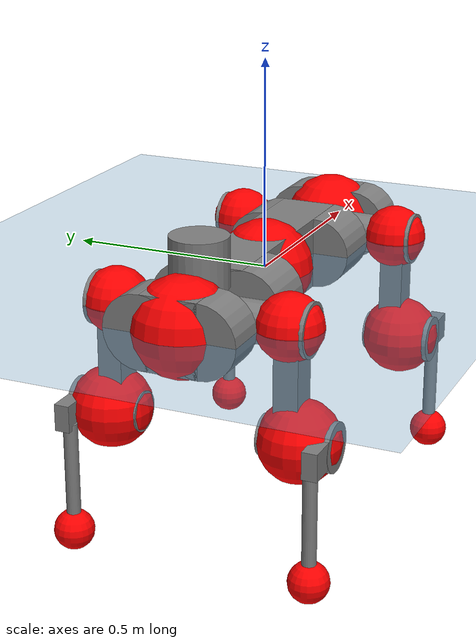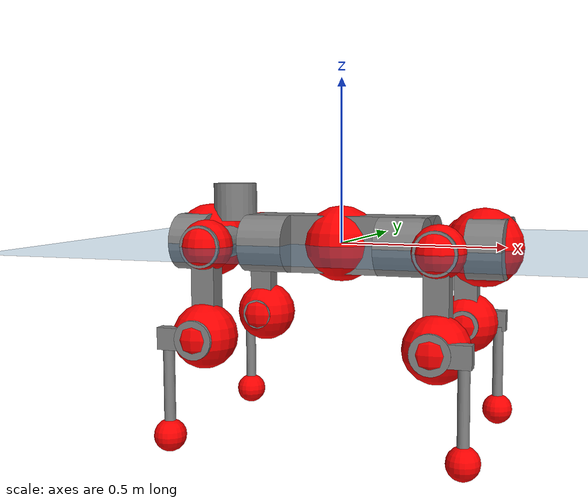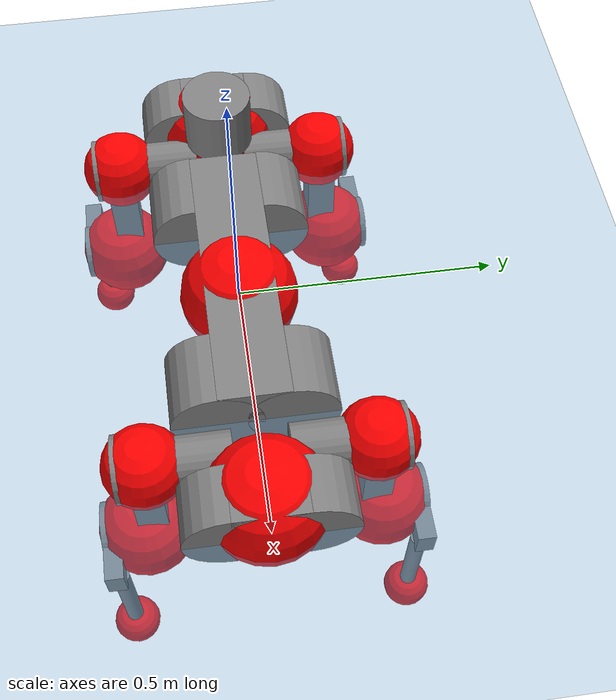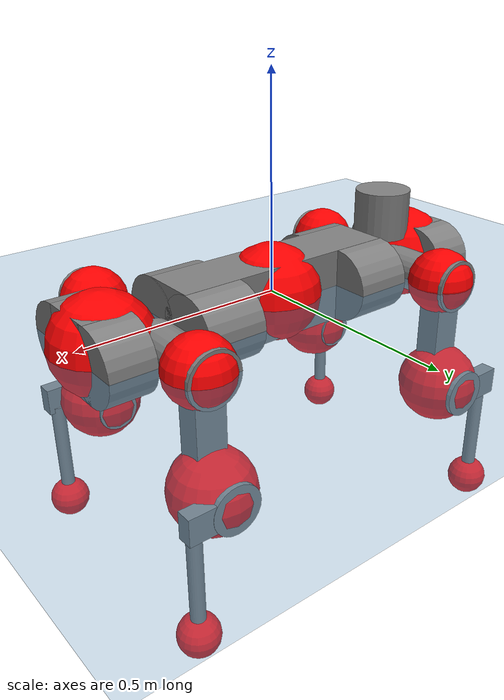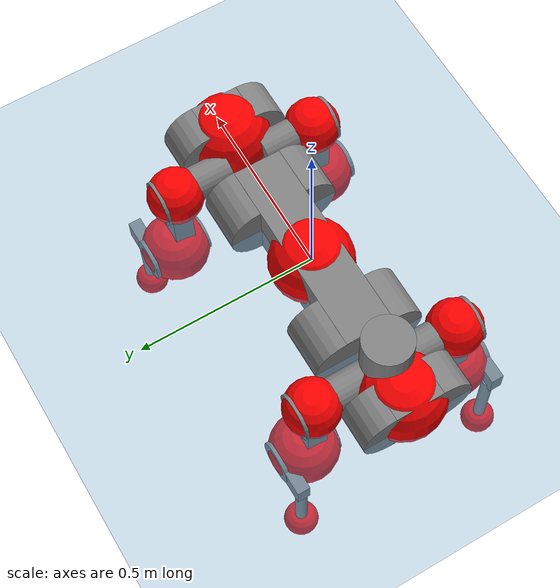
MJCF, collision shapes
<mujoco model="anymal_c">
  <compiler angle="radian" assetdir="assets" balanceinertia="true" inertiafromgeom="false"/>

  <option timestep="0.005" density="1.2" viscosity="2e-05"/>

  <size nkey="1"/>

  <visual>
    <quality shadowsize="8192"/>
    <map shadowclip="0.5"/>
  </visual>

  <default>
    <default class="/">
      <material specular="0" shininess="0.25"/>
      <geom contype="0" conaffinity="0" group="1" solref="-1000 -80"/>
      <site size="0.01 0.005 0.005" group="5"/>
      <general forcelimited="true" forcerange="-80 80" biastype="affine" gainprm="80" biasprm="0 -80 -2"/>
      <default class="anymal_c">
        <joint armature="0.01" damping="0.01" frictionloss="0.1"/>
        <default class="visual">
          <geom type="mesh" group="2"/>
          <default class="visual_zflip"/>
        </default>
        <default class="collision">
          <geom type="cylinder" group="3"/>
          <default class="foot">
            <geom size="0.03 0 0" type="sphere" condim="6" priority="1" friction="0.8 0.02 0.01" solimp="0.015 1 0.03"/>
          </default>
        </default>
      </default>
      <default class="reward_collision_sphere">
        <geom group="5" rgba="1 0 0 1"/>
      </default>
    </default>
  </default>

  <asset>
    <texture type="skybox" colorspace="auto" name="//unnamed_texture_0" builtin="gradient" rgb1="0.95 0.95 0.95" rgb2="0.95 0.95 0.95" width="100" height="600"/>
    <texture type="2d" colorspace="auto" name="texplane" builtin="checker" rgb1="0.345 0.575 0.748" rgb2="0.345 0.575 0.748" markrgb="1 1 1" width="512" height="512"/>
    <texture type="2d" colorspace="linear" name="base" file="base.png"/>
    <texture type="2d" colorspace="linear" name="top_shell" file="top_shell.png"/>
    <texture type="2d" colorspace="linear" name="bottom_shell" file="bottom_shell.png"/>
    <texture type="2d" colorspace="linear" name="remote" file="remote.png"/>
    <texture type="2d" colorspace="linear" name="hatch" file="hatch.png"/>
    <texture type="2d" colorspace="linear" name="handle" file="handle.png"/>
    <texture type="2d" colorspace="linear" name="face" file="face.png"/>
    <texture type="2d" colorspace="linear" name="battery" file="battery.png"/>
    <texture type="2d" colorspace="linear" name="lidar_cage" file="lidar_cage.png"/>
    <texture type="2d" colorspace="linear" name="depth_camera" file="depth_camera.png"/>
    <texture type="2d" colorspace="linear" name="wide_angle_camera" file="wide_angle_camera.png"/>
    <texture type="2d" colorspace="linear" name="lidar" file="lidar.png"/>
    <texture type="2d" colorspace="linear" name="drive" file="drive.png"/>
    <texture type="2d" colorspace="linear" name="hip_l" file="hip_l.png"/>
    <texture type="2d" colorspace="linear" name="shank_l" file="shank_l.png"/>
    <texture type="2d" colorspace="linear" name="foot" file="foot.png"/>
    <texture type="2d" colorspace="linear" name="thigh" file="thigh.png"/>
    <texture type="2d" colorspace="linear" name="shank_r" file="shank_r.png"/>
    <texture type="2d" colorspace="linear" name="hip_r" file="hip_r.png"/>
    <material name="MatPlane" class="/" texture="texplane" texuniform="true" texrepeat="2 2" specular="0.9" shininess="0.5"/>
    <material name="black_plastic" class="/" rgba="0.007 0.007 0.007 1"/>
    <material name="green" class="/" rgba="0.052 0.178 0.033 1"/>
    <material name="red" class="/" rgba="0.178 0.006 0.005 1"/>
    <material name="yellow" class="/" rgba="0.178 0.119 0.006 1"/>
    <material name="lwl" class="/" rgba="0.8 0.8 0.8 1"/>
    <material name="base" class="/" texture="base"/>
    <material name="top_shell" class="/" texture="top_shell"/>
    <material name="bottom_shell" class="/" texture="bottom_shell"/>
    <material name="hip_l" class="/" texture="hip_l"/>
    <material name="thigh" class="/" texture="thigh"/>
    <material name="shank_l" class="/" texture="shank_l"/>
    <material name="foot" class="/" texture="foot"/>
    <material name="hip_r" class="/" texture="hip_r"/>
    <material name="shank" class="/" texture="shank_r"/>
    <material name="hatch" class="/" texture="hatch"/>
    <material name="remote" class="/" texture="remote"/>
    <material name="handle" class="/" texture="handle"/>
    <material name="face" class="/" texture="face"/>
    <material name="depth_camera" class="/" texture="depth_camera"/>
    <material name="wide_angle_camera" class="/" texture="wide_angle_camera"/>
    <material name="battery" class="/" texture="battery"/>
    <material name="lidar_cage" class="/" texture="lidar_cage"/>
    <material name="lidar" class="/" texture="lidar"/>
    <material name="drive" class="/" texture="drive"/>
    <mesh name="base_0" class="/" file="base_0.obj"/>
    <mesh name="base_1" class="/" file="base_1.obj"/>
    <mesh name="base_2" class="/" file="base_2.obj"/>
    <mesh name="base_3" class="/" file="base_3.obj"/>
    <mesh name="base_4" class="/" file="base_4.obj"/>
    <mesh name="base_5" class="/" file="base_5.obj"/>
    <mesh name="top_shell" class="/" file="top_shell.obj"/>
    <mesh name="bottom_shell" class="/" file="bottom_shell.obj"/>
    <mesh name="remote" class="/" file="remote.obj"/>
    <mesh name="handle" class="/" file="handle.obj"/>
    <mesh name="face" class="/" file="face.obj"/>
    <mesh name="wide_angle_camera" class="/" file="wide_angle_camera.obj"/>
    <mesh name="depth_camera" class="/" file="depth_camera.obj"/>
    <mesh name="battery" class="/" file="battery.obj"/>
    <mesh name="lidar_cage" class="/" file="lidar_cage.obj"/>
    <mesh name="lidar" class="/" file="lidar.obj"/>
    <mesh name="drive" class="/" file="drive.obj"/>
    <mesh name="hip_l" class="/" file="hip_l.obj"/>
    <mesh name="thigh" class="/" file="thigh.obj"/>
    <mesh name="shank_l" class="/" file="shank_l.obj"/>
    <mesh name="foot" class="/" file="foot.obj"/>
    <mesh name="hip_r" class="/" file="hip_r.obj"/>
    <mesh name="hatch" class="/" file="hatch.obj"/>
    <mesh name="shank_r" class="/" file="shank_r.obj"/>
  </asset>

  <worldbody>
    <geom name="floor" class="/" size="100 100 0.125" type="plane" group="0" material="MatPlane"/>
    <light name="toplight_shadow" class="/" pos="0 0 5" dir="0.0990148 0.0990148 -0.990148" type="directional" ambient="0.04 0.04 0.04" diffuse="0.55 0.55 0.55" specular="0.12 0.12 0.12"/>
    <light name="toplight_fill" class="/" pos="0 0 5" dir="0.0990148 0.0990148 -0.990148" type="directional" castshadow="false" ambient="0.04 0.04 0.04" diffuse="0.3 0.3 0.3" specular="0.08 0.08 0.08"/>
    <body name="trunk" childclass="anymal_c" pos="-0.000649168 0.000476383 -0.000876986" quat="1 0.000403426 -0.000180401 0.000576283">
      <inertial pos="0.00139751 0.00220916 0.0414151" quat="0.504504 0.495626 0.503731 0.49607" mass="16.8688" diaginertia="0.567463 0.64031 0.145742"/>
      <joint name="//unnamed_joint_0" type="free" armature="0" damping="0" frictionloss="0"/>
      <geom name="//unnamed_geom_1" class="visual" material="green" mesh="base_0"/>
      <geom name="//unnamed_geom_2" class="visual" material="yellow" mesh="base_1"/>
      <geom name="//unnamed_geom_3" class="visual" material="red" mesh="base_2"/>
      <geom name="//unnamed_geom_4" class="visual" material="black_plastic" mesh="base_3"/>
      <geom name="//unnamed_geom_5" class="visual" material="lwl" mesh="base_4"/>
      <geom name="//unnamed_geom_6" class="visual" material="base" mesh="base_5"/>
      <geom name="trunk_1" class="collision" size="0.280605 0.0677322 0.0870843" type="box"/>
      <geom name="trunk_2" class="collision" size="0.0870843 0.0701512" pos="0.211736 0.0703542 0" quat="0.707107 0 0.707107 0"/>
      <geom name="trunk_3" class="collision" size="0.0870843 0.0701512" pos="-0.211736 0.0703542 0" quat="0.707107 0 0.707107 0"/>
      <geom name="trunk_4" class="collision" size="0.0870843 0.0701512" pos="0.211736 -0.0703542 0" quat="0.707107 0 0.707107 0"/>
      <geom name="trunk_5" class="collision" size="0.0870843 0.0701512" pos="-0.211736 -0.0703542 0" quat="0.707107 0 0.707107 0"/>
      <geom name="//unnamed_geom_12" class="visual" material="top_shell" mesh="top_shell"/>
      <geom name="//unnamed_geom_13" class="visual" material="bottom_shell" mesh="bottom_shell"/>
      <geom name="//unnamed_geom_14" class="visual" material="remote" mesh="remote"/>
      <geom name="//unnamed_geom_15" class="visual" material="handle" mesh="handle"/>
      <geom name="//unnamed_geom_16" class="visual" pos="0.403515 0 0" quat="1 0 0 0" material="face" mesh="face"/>
      <geom name="trunk_6" class="collision" size="0.0532182 0.0677322 0.0870843" pos="0.457058 0 0" type="box"/>
      <geom name="//unnamed_geom_18" class="collision" size="0.0870843 0.0532182" pos="0.457058 0.0703542 0" quat="0.707107 0 0.707107 0"/>
      <geom name="//unnamed_geom_19" class="collision" size="0.0870843 0.0532182" pos="0.457058 -0.0703542 0" quat="0.707107 0 0.707107 0"/>
      <geom name="//unnamed_geom_20" class="visual" pos="0.449414 0 -0.0266138" quat="0.965926 0 0.258819 0" material="depth_camera" mesh="depth_camera"/>
      <geom name="//unnamed_geom_21" class="visual" pos="0.499405 0 0.013836" material="wide_angle_camera" mesh="wide_angle_camera"/>
      <geom name="//unnamed_geom_22" class="visual_zflip" pos="-0.403515 0 0" quat="0 0 0 1" material="face" mesh="face"/>
      <geom name="trunk_7" class="collision" size="0.0532182 0.0677322 0.0870843" pos="-0.457058 0 0" quat="0 0 0 1" type="box"/>
      <geom name="//unnamed_geom_24" class="collision" size="0.0870843 0.0532182" pos="-0.457058 -0.0703542 0" quat="0 -0.707107 0 0.707107"/>
      <geom name="//unnamed_geom_25" class="collision" size="0.0870843 0.0532182" pos="-0.457058 0.0703542 0" quat="0 -0.707107 0 0.707107"/>
      <geom name="//unnamed_geom_26" class="visual" pos="-0.449414 0 -0.0266138" quat="0 -0.258819 0 0.965926" material="depth_camera" mesh="depth_camera"/>
      <geom name="//unnamed_geom_27" class="visual_zflip" pos="-0.499405 0 0.013836" quat="0 0 0 1" material="wide_angle_camera" mesh="wide_angle_camera"/>
      <geom name="//unnamed_geom_28" class="visual" material="battery" mesh="battery"/>
      <geom name="//unnamed_geom_29" class="visual" pos="0 0.077259 0.0272238" quat="0.683013 -0.183013 0.183013 0.683013" material="depth_camera" mesh="depth_camera"/>
      <geom name="//unnamed_geom_30" class="visual" pos="0 -0.077259 0.0272238" quat="0.683013 0.183013 0.183013 -0.683013" material="depth_camera" mesh="depth_camera"/>
      <geom name="//unnamed_geom_31" class="visual" pos="-0.354354 0 0.0679325" quat="1 0 0 0" material="lidar_cage" mesh="lidar_cage"/>
      <geom name="trunk_8" class="collision" size="0.0677322 0.0580562" pos="-0.354354 0 0.123388"/>
      <geom name="//unnamed_geom_33" class="visual" pos="-0.354354 1.23992e-05 0.131429" quat="0.707107 0 0 -0.707107" material="lidar" mesh="lidar"/>
      <geom name="//unnamed_geom_34" class="visual" pos="0.291952 0.104497 1.39395e-09" quat="0.258819 0.965926 0 0" material="drive" mesh="drive"/>
      <geom name="//unnamed_geom_35" class="visual" pos="0.291952 -0.104497 -1.39395e-09" quat="0.258819 -0.965926 0 0" material="drive" mesh="drive"/>
      <geom name="//unnamed_geom_36" class="visual" pos="-0.291952 0.104497 -1.39395e-09" quat="0 0 0.965926 -0.258819" material="drive" mesh="drive"/>
      <geom name="//unnamed_geom_37" class="visual" pos="-0.291952 -0.104497 1.39395e-09" quat="0 0 -0.965926 -0.258819" material="drive" mesh="drive"/>
      <geom name="//unnamed_geom_38" class="visual" pos="0.112926 0 0.0674703" quat="1 0 0 0" material="hatch" mesh="hatch"/>
      <geom name="//unnamed_geom_39" class="reward_collision_sphere" size="0.116112"/>
      <geom name="//unnamed_geom_40" class="reward_collision_sphere" size="0.116112" pos="0.438075 0 0"/>
      <geom name="//unnamed_geom_41" class="reward_collision_sphere" size="0.116112" pos="-0.438075 0 0"/>
      <site name="imu" pos="0.243131 0.0225456 0.0303791" size="0.00967603"/>
      <camera name="track" pos="0 -2.01012 0" quat="0.707107 0.707107 0 0" mode="trackcom"/>
      <camera name="ego_camera" pos="0.438075 0 -0.03697" quat="-0.5 -0.5 0.5 0.5"/>
      <body name="LF_HIP" pos="0.291923 0.10729 0.0026629" quat="0.258789 0.965934 -3.89272e-05 5.44368e-05">
        <inertial pos="0.053478 -0.0148033 -0.00848412" quat="-0.129974 0.711082 -0.139101 0.676845" mass="2.43718" diaginertia="0.00510333 0.00478367 0.00213686"/>
        <joint name="LF_HAA" pos="0 0 0" axis="0.999959 0.00751622 0.00497763" range="-0.720852 0.544633" armature="0.00977781" damping="0" frictionloss="0.110079"/>
        <geom name="//unnamed_geom_42" class="visual" pos="0 8.2e-05 -1.34684e-05" quat="0.258819 -0.965926 0 0" material="hip_l" mesh="hip_l"/>
        <geom name="//unnamed_geom_43" class="visual" pos="0.0583126 -0.071045 -0.0404201" quat="0.183013 -0.683013 0.683013 0.183013" material="drive" mesh="drive"/>
        <geom name="//unnamed_geom_44" class="collision" size="0.0483802 0.0677322" pos="0.0583126 -0.0120203 -0.00638195" quat="-0.353553 -0.612372 0.612372 -0.353553"/>
        <body name="LF_THIGH" pos="0.0562196 -0.0707018 -0.0373606" quat="0.182922 -0.683275 0.682836 0.182784">
          <inertial pos="0.0300698 0.000228005 -0.226033" quat="0.992209 -0.00364965 -0.0853748 0.0906605" mass="2.73604" diaginertia="0.0259062 0.029838 0.00267078"/>
          <joint name="LF_HFE" pos="0 0 0" axis="0.999999 0.000951372 0.000695336" range="-3.20158 3.13381" armature="0.0085228" damping="0.0210573" frictionloss="0.0972617"/>
          <geom name="//unnamed_geom_45" class="visual" pos="-0.000627925 -9.89463e-07 0" quat="0.707107 0 0 -0.707107" material="thigh" mesh="thigh"/>
          <geom name="//unnamed_geom_46" class="collision" size="0.0628942 0.0387041" pos="0.03894 0 0" quat="0.5 0.5 -0.5 -0.5"/>
          <geom name="//unnamed_geom_47" class="collision" size="0.0362851 0.0290281 0.136736" pos="0.029205 0 -0.13061" quat="0.707107 0 0 -0.707107" type="box"/>
          <geom name="//unnamed_geom_48" class="visual" pos="0.097642 0 -0.263412" quat="1 0 0 0" material="drive" mesh="drive"/>
          <geom name="//unnamed_geom_49" class="collision" size="0.0483802 0.0677322" pos="0.029497 0 -0.263412" quat="0.707107 0 0.707107 0"/>
          <geom name="//unnamed_geom_50" class="reward_collision_sphere" size="0.0774083" pos="0.0243375 0 0"/>
          <body name="LF_SHANK" pos="0.0990206 0.000341219 -0.264536" quat="1 -2.27993e-06 -1.41074e-06 -7.35097e-05">
            <inertial pos="0.00518071 -0.0628162 -0.0745095" quat="0.993192 -0.11355 0.00297156 -0.0258427" mass="0.540123" diaginertia="0.00879514 0.00945683 0.000758059"/>
            <joint name="LF_KFE" pos="0 0 0" axis="0.999973 0.00293404 0.00678108" range="-3.14594 3.19585" armature="0.00926107" damping="0.0066847" frictionloss="0.0998272"/>
            <geom name="//unnamed_geom_51" class="visual" pos="-0.000204753 -0.00109175 0" quat="0.707107 0 0 -0.707107" material="shank_l" mesh="shank_l"/>
            <geom name="LF_kfe_act" class="collision" size="0.0580562 0.0193521" pos="0.01947 0 0" quat="0.5 0.5 -0.5 -0.5"/>
            <geom name="//unnamed_geom_53" class="collision" size="0.0556362 0.0326566 0.0183845" pos="0.01947 -0.0577899 0" quat="0.5 0.5 -0.5 -0.5" type="box"/>
            <geom name="//unnamed_geom_54" class="visual" pos="0.0127042 -0.0887468 -0.312369" quat="0.382683 0 0 -0.92388" material="foot" mesh="foot"/>
            <geom name="LF_calf" class="collision" size="0.0169331 0.136676" pos="0.0127042 -0.088395 -0.156185" quat="0.707107 0 0 -0.707107"/>
            <geom name="LF_foot" class="foot" size="0.028879" pos="0.0127042 -0.088395 -0.291574" quat="0.707107 0 0 -0.707107"/>
            <geom name="//unnamed_geom_57" class="reward_collision_sphere" size="0.0967603" pos="-0.048675 0 0"/>
            <geom name="//unnamed_geom_58" class="reward_collision_sphere" size="0.0483802" pos="0.0127042 -0.088395 -0.291574"/>
            <site name="LF_foot" class="foot" pos="0.0127042 -0.088395 -0.291574" quat="0.707107 0 0 -0.707107" size="0.00967603"/>
          </body>
        </body>
      </body>
      <body name="RF_HIP" pos="0.289794 -0.103797 0.00265884" quat="0.258894 -0.965906 2.09092e-06 0.000129479">
        <inertial pos="0.0530646 0.0159116 -0.00845462" quat="0.132615 0.680978 0.128972 0.708554" mass="2.49206" diaginertia="0.0050208 0.00496946 0.00216212"/>
        <joint name="RF_HAA" pos="0 0 0" axis="0.999934 0.00508617 -0.0102621" range="-0.511251 0.669416" armature="0.0101314" damping="0" frictionloss="0.110398"/>
        <geom name="//unnamed_geom_59" class="visual" pos="0 -8.19994e-05 -1.34684e-05" quat="0.258819 0.965926 0 0" material="hip_r" mesh="hip_r"/>
        <geom name="//unnamed_geom_60" class="visual" pos="0.0583126 0.071045 -0.0404201" quat="0.183013 0.683013 0.683013 -0.183013" material="drive" mesh="drive"/>
        <geom name="//unnamed_geom_61" class="collision" size="0.0483802 0.0677322" pos="0.0583126 0.0120203 -0.00638195" quat="-0.353553 0.612372 0.612372 0.353553"/>
        <body name="RF_THIGH" pos="0.0581528 0.0701745 -0.0401854" quat="0.182426 0.683007 0.68337 -0.182286">
          <inertial pos="0.0274954 0.000194677 -0.228055" quat="0.993273 -0.000235249 -0.0773484 0.0861782" mass="2.87518" diaginertia="0.0262254 0.0298129 0.00291485"/>
          <joint name="RF_HFE" pos="0 0 0" axis="0.999999 0.00107253 -0.000793103" stiffness="0.0105401" range="-3.14636 3.08184" armature="0.00838167" damping="0.0109078" frictionloss="0.0849696"/>
          <geom name="//unnamed_geom_62" class="visual" pos="-0.000627925 -9.89463e-07 0" quat="0.707107 0 0 -0.707107" material="thigh" mesh="thigh"/>
          <geom name="//unnamed_geom_63" class="collision" size="0.0628942 0.0387041" pos="0.03894 0 0" quat="0.5 0.5 0.5 0.5"/>
          <geom name="//unnamed_geom_64" class="collision" size="0.0362851 0.0290281 0.136736" pos="0.029205 0 -0.13061" quat="0.707107 0 0 0.707107" type="box"/>
          <geom name="//unnamed_geom_65" class="visual" pos="0.097642 0 -0.263412" quat="1 0 0 0" material="drive" mesh="drive"/>
          <geom name="//unnamed_geom_66" class="collision" size="0.0483802 0.0677322" pos="0.029497 0 -0.263412" quat="0.707107 0 0.707107 0"/>
          <geom name="//unnamed_geom_67" class="reward_collision_sphere" size="0.0774083" pos="0.0243375 0 0"/>
          <body name="RF_SHANK" pos="0.0962338 0.000892818 -0.26382" quat="1 0.000148434 0.00012624 3.44098e-05">
            <inertial pos="0.00475658 0.0599606 -0.0718846" quat="0.992815 0.11647 -0.00187546 0.0273636" mass="0.524169" diaginertia="0.00882451 0.00951352 0.000713945"/>
            <joint name="RF_KFE" pos="0 0 0" axis="1 1.9698e-05 -8.39787e-05" range="-3.14508 3.14907" armature="0.00935195" damping="0" frictionloss="0.0838292"/>
            <geom name="//unnamed_geom_68" class="visual" pos="-0.000204752 0.00109175 0" quat="0.707107 0 0 0.707107" material="shank" mesh="shank_r"/>
            <geom name="RF_kfe_act" class="collision" size="0.0580562 0.0193521" pos="0.01947 0 0" quat="0.5 0.5 0.5 0.5"/>
            <geom name="//unnamed_geom_70" class="collision" size="0.0556362 0.0326566 0.0183845" pos="0.01947 0.0577899 0" quat="0.5 0.5 0.5 0.5" type="box"/>
            <geom name="//unnamed_geom_71" class="visual" pos="0.0127041 0.0887468 -0.312369" quat="0.382683 0 0 0.92388" material="foot" mesh="foot"/>
            <geom name="RF_calf" class="collision" size="0.0169331 0.136676" pos="0.0127042 0.088395 -0.156185" quat="0.707107 0 0 0.707107"/>
            <geom name="RF_foot" class="foot" size="0.0272541" pos="0.0127042 0.088395 -0.291574" quat="0.707107 0 0 0.707107"/>
            <geom name="//unnamed_geom_74" class="reward_collision_sphere" size="0.0967603" pos="-0.048675 0 0"/>
            <geom name="//unnamed_geom_75" class="reward_collision_sphere" size="0.0483802" pos="0.0127042 0.088395 -0.291574"/>
            <site name="RF_foot" class="foot" pos="0.0127042 0.088395 -0.291574" quat="0.707107 0 0 0.707107" size="0.00967603"/>
          </body>
        </body>
      </body>
      <body name="LH_HIP" pos="-0.292047 0.102352 0.0029988" quat="-0.000129806 -0.000474575 0.966161 -0.257939">
        <inertial pos="0.0538 0.013543 -0.00852751" quat="0.12866 0.686052 0.128547 0.704453" mass="2.45509" diaginertia="0.00477765 0.00500573 0.0020732"/>
        <joint name="LH_HAA" pos="0 0 0" axis="0.999944 -0.0105372 0.000289776" range="-0.531716 0.752425" armature="0.0106861" damping="0.000779461" frictionloss="0.0947957"/>
        <geom name="//unnamed_geom_76" class="visual" pos="0 -8.19994e-05 -1.34684e-05" quat="-0.258819 -0.965926 0 0" material="hip_r" mesh="hip_r"/>
        <geom name="//unnamed_geom_77" class="visual" pos="0.0583126 0.071045 -0.0404201" quat="0.183013 0.683013 0.683013 -0.183013" material="drive" mesh="drive"/>
        <geom name="//unnamed_geom_78" class="collision" size="0.0483802 0.0677322" pos="0.0583126 0.0120203 -0.00638195" quat="-0.353553 0.612372 0.612372 0.353553"/>
        <body name="LH_THIGH" pos="0.0584134 0.0710327 -0.0398756" quat="0.184107 0.683079 0.682456 -0.183745">
          <inertial pos="0.0304399 -0.00275954 -0.227437" quat="0.992786 -0.00509329 -0.0810359 0.0882236" mass="2.8179" diaginertia="0.0269513 0.0305228 0.0029226"/>
          <joint name="LH_HFE" pos="0 0 0" axis="0.999991 0.0028066 -0.00315801" stiffness="0.0106132" range="-3.19872 3.12222" armature="0.00934274" damping="0.00730079" frictionloss="0.109054"/>
          <geom name="//unnamed_geom_79" class="visual" pos="-0.000627925 -9.89463e-07 0" quat="0.707107 0 0 -0.707107" material="thigh" mesh="thigh"/>
          <geom name="//unnamed_geom_80" class="collision" size="0.0628942 0.0387041" pos="0.03894 0 0" quat="0.5 0.5 -0.5 -0.5"/>
          <geom name="//unnamed_geom_81" class="collision" size="0.0362851 0.0290281 0.136736" pos="0.029205 0 -0.13061" quat="0.707107 0 0 -0.707107" type="box"/>
          <geom name="//unnamed_geom_82" class="visual" pos="0.097642 0 -0.263412" quat="1 0 0 0" material="drive" mesh="drive"/>
          <geom name="//unnamed_geom_83" class="collision" size="0.0483802 0.0677322" pos="0.029497 0 -0.263412" quat="0.707107 0 0.707107 0"/>
          <geom name="//unnamed_geom_84" class="reward_collision_sphere" size="0.0774083" pos="0.0243375 0 0"/>
          <body name="LH_SHANK" pos="0.0951891 -0.00161378 -0.264488" quat="0.999999 -0.00111864 -0.000513137 0.000373716">
            <inertial pos="0.00428274 0.0641673 -0.0751296" quat="0.993768 0.109632 0.000606793 0.0201241" mass="0.508777" diaginertia="0.00859876 0.00884086 0.000751396"/>
            <joint name="LH_KFE" pos="0 0 0" axis="0.999993 -0.00244181 -0.00290651" range="-3.1503 3.13666" armature="0.0104688" damping="0.00667419" frictionloss="0.0945996"/>
            <geom name="//unnamed_geom_85" class="visual" pos="-0.000204752 0.00109175 0" quat="-0.707107 0 0 -0.707107" material="shank" mesh="shank_r"/>
            <geom name="LH_kfe_act" class="collision" size="0.0580562 0.0193521" pos="0.01947 0 0" quat="0.5 0.5 -0.5 -0.5"/>
            <geom name="//unnamed_geom_87" class="collision" size="0.0556362 0.0326566 0.0183845" pos="0.01947 0.0577899 0" quat="0.5 0.5 -0.5 -0.5" type="box"/>
            <geom name="//unnamed_geom_88" class="visual" pos="0.0127041 0.0887468 -0.312369" quat="-0.382683 0 0 -0.92388" material="foot" mesh="foot"/>
            <geom name="LH_calf" class="collision" size="0.0169331 0.136676" pos="0.0127042 0.088395 -0.156185" quat="0.707107 0 0 -0.707107"/>
            <geom name="LH_foot" class="foot" size="0.0321456" pos="0.0127042 0.088395 -0.291574" quat="0.707107 0 0 -0.707107"/>
            <geom name="//unnamed_geom_91" class="reward_collision_sphere" size="0.0967603" pos="-0.048675 0 0"/>
            <geom name="//unnamed_geom_92" class="reward_collision_sphere" size="0.0483802" pos="0.0127042 0.088395 -0.291574"/>
            <site name="LH_foot" class="foot" pos="0.0127042 0.088395 -0.291574" quat="0.707107 0 0 -0.707107" size="0.00967603"/>
          </body>
        </body>
      </body>
      <body name="RH_HIP" pos="-0.291584 -0.104934 0.00225718" quat="5.93638e-05 -0.000107636 -0.965836 -0.259153">
        <inertial pos="0.0528003 -0.0182676 -0.00791193" quat="-0.12505 0.71208 -0.141559 0.676215" mass="2.54373" diaginertia="0.00526027 0.005072 0.00232114"/>
        <joint name="RH_HAA" pos="0 0 0" axis="0.999999 4.54387e-05 0.00107365" range="-0.777651 0.492916" armature="0.00974177" damping="0.011546" frictionloss="0.0983982"/>
        <geom name="//unnamed_geom_93" class="visual" pos="0 8.2e-05 -1.34684e-05" quat="-0.258819 0.965926 0 0" material="hip_l" mesh="hip_l"/>
        <geom name="//unnamed_geom_94" class="visual" pos="0.0583126 -0.071045 -0.0404201" quat="-0.183013 0.683013 -0.683013 -0.183013" material="drive" mesh="drive"/>
        <geom name="//unnamed_geom_95" class="collision" size="0.0483802 0.0677322" pos="0.0583126 -0.0120203 -0.00638195" quat="0.353553 0.612372 -0.612372 0.353553"/>
        <body name="RH_THIGH" pos="0.058874 -0.0716552 -0.0408174" quat="-0.183029 0.683001 -0.683019 -0.183016">
          <inertial pos="0.0327251 -0.00286023 -0.228852" quat="0.994113 0.00221691 -0.0687999 0.0836713" mass="2.70935" diaginertia="0.0265901 0.0299881 0.00279208"/>
          <joint name="RH_HFE" pos="0 0 0" axis="0.999924 -0.0123232 0.000611803" range="-3.14351 3.09366" armature="0.00974995" damping="0" frictionloss="0.0914509"/>
          <geom name="//unnamed_geom_96" class="visual" pos="-0.000627925 -9.89463e-07 0" quat="0.707107 0 0 -0.707107" material="thigh" mesh="thigh"/>
          <geom name="//unnamed_geom_97" class="collision" size="0.0628942 0.0387041" pos="0.03894 0 0" quat="0.5 0.5 0.5 0.5"/>
          <geom name="//unnamed_geom_98" class="collision" size="0.0362851 0.0290281 0.136736" pos="0.029205 0 -0.13061" quat="0.707107 0 0 0.707107" type="box"/>
          <geom name="//unnamed_geom_99" class="visual" pos="0.097642 0 -0.263412" quat="1 0 0 0" material="drive" mesh="drive"/>
          <geom name="//unnamed_geom_100" class="collision" size="0.0483802 0.0677322" pos="0.029497 0 -0.263412" quat="0.707107 0 0.707107 0"/>
          <geom name="//unnamed_geom_101" class="reward_collision_sphere" size="0.0774083" pos="0.0243375 0 0"/>
          <body name="RH_SHANK" pos="0.0966581 0.003026 -0.265327" quat="1 -6.92741e-05 -3.67526e-05 3.66065e-06">
            <inertial pos="0.00724563 -0.0609969 -0.0745377" quat="0.992416 -0.121296 0.00100333 -0.0199118" mass="0.550331" diaginertia="0.0092243 0.010149 0.000767791"/>
            <joint name="RH_KFE" pos="0 0 0" axis="0.999996 -0.0027241 0.00102755" range="-3.09194 3.1178" armature="0.0098391" damping="0" frictionloss="0.0908449"/>
            <geom name="//unnamed_geom_102" class="visual" pos="-0.000204753 -0.00109175 0" quat="0.707107 0 0 -0.707107" material="shank_l" mesh="shank_l"/>
            <geom name="RH_kfe_act" class="collision" size="0.0580562 0.0193521" pos="0.01947 0 0" quat="0.5 0.5 0.5 0.5"/>
            <geom name="//unnamed_geom_104" class="collision" size="0.0556362 0.0326566 0.0183845" pos="0.01947 -0.0577899 0" quat="0.5 0.5 0.5 0.5" type="box"/>
            <geom name="//unnamed_geom_105" class="visual" pos="0.0127042 -0.0887468 -0.312369" quat="0.382683 0 0 -0.92388" material="foot" mesh="foot"/>
            <geom name="RH_calf" class="collision" size="0.0169331 0.136676" pos="0.0127042 -0.088395 -0.156185" quat="0.707107 0 0 0.707107"/>
            <geom name="RH_foot" class="foot" size="0.0236046" pos="0.0127042 -0.088395 -0.291574" quat="0.707107 0 0 0.707107"/>
            <geom name="//unnamed_geom_108" class="reward_collision_sphere" size="0.0967603" pos="-0.048675 0 0"/>
            <geom name="//unnamed_geom_109" class="reward_collision_sphere" size="0.0483802" pos="0.0127042 -0.088395 -0.291574"/>
            <site name="RH_foot" class="foot" pos="0.0127042 -0.088395 -0.291574" quat="0.707107 0 0 0.707107" size="0.00967603"/>
          </body>
        </body>
      </body>
    </body>
  </worldbody>

  <contact>
    <pair class="/" geom1="floor" geom2="LF_foot" name="//unnamed_contact_0"/>
    <pair class="/" geom1="floor" geom2="RF_foot" name="//unnamed_contact_1"/>
    <pair class="/" geom1="floor" geom2="LH_foot" name="//unnamed_contact_2"/>
    <pair class="/" geom1="floor" geom2="RH_foot" name="//unnamed_contact_3"/>
  </contact>

  <actuator>
    <general name="LF_HAA" class="/" joint="LF_HAA" forcerange="-77.1616 77.1616" gainprm="77.9607" biasprm="0 -77.9607 -1.81731"/>
    <general name="LF_HFE" class="/" joint="LF_HFE" forcerange="-78.6167 78.6167" gainprm="77.9607" biasprm="0 -77.9607 -1.81731"/>
    <general name="LF_KFE" class="/" joint="LF_KFE" forcerange="-85.8427 85.8427" gainprm="77.9607" biasprm="0 -77.9607 -1.81731"/>
    <general name="RF_HAA" class="/" joint="RF_HAA" forcerange="-79.0697 79.0697" gainprm="77.9607" biasprm="0 -77.9607 -1.81731"/>
    <general name="RF_HFE" class="/" joint="RF_HFE" forcerange="-87.6971 87.6971" gainprm="77.9607" biasprm="0 -77.9607 -1.81731"/>
    <general name="RF_KFE" class="/" joint="RF_KFE" forcerange="-76.6411 76.6411" gainprm="77.9607" biasprm="0 -77.9607 -1.81731"/>
    <general name="LH_HAA" class="/" joint="LH_HAA" forcerange="-77.5567 77.5567" gainprm="77.9607" biasprm="0 -77.9607 -1.81731"/>
    <general name="LH_HFE" class="/" joint="LH_HFE" forcerange="-74.7267 74.7267" gainprm="77.9607" biasprm="0 -77.9607 -1.81731"/>
    <general name="LH_KFE" class="/" joint="LH_KFE" forcerange="-82.6415 82.6415" gainprm="77.9607" biasprm="0 -77.9607 -1.81731"/>
    <general name="RH_HAA" class="/" joint="RH_HAA" forcerange="-77.7131 77.7131" gainprm="77.9607" biasprm="0 -77.9607 -1.81731"/>
    <general name="RH_HFE" class="/" joint="RH_HFE" forcerange="-72.5605 72.5605" gainprm="77.9607" biasprm="0 -77.9607 -1.81731"/>
    <general name="RH_KFE" class="/" joint="RH_KFE" forcerange="-85.963 85.963" gainprm="77.9607" biasprm="0 -77.9607 -1.81731"/>
  </actuator>

  <sensor>
    <gyro site="imu" name="imu_angular_velocity"/>
    <velocimeter site="imu" name="imu_linear_velocity"/>
    <framelinvel objtype="site" objname="LF_foot" name="LF_foot_global_linear_velocity"/>
    <framelinvel objtype="site" objname="RF_foot" name="RF_foot_global_linear_velocity"/>
    <framelinvel objtype="site" objname="LH_foot" name="LH_foot_global_linear_velocity"/>
    <framelinvel objtype="site" objname="RH_foot" name="RH_foot_global_linear_velocity"/>
  </sensor>

  <keyframe>
    <key name="home" qpos="0 0 0.55 1 0 0 0 0 0.4 -0.8 0 -0.4 0.8 0 -0.4 0.8 0 0.4 -0.8"/>
  </keyframe>
</mujoco>
